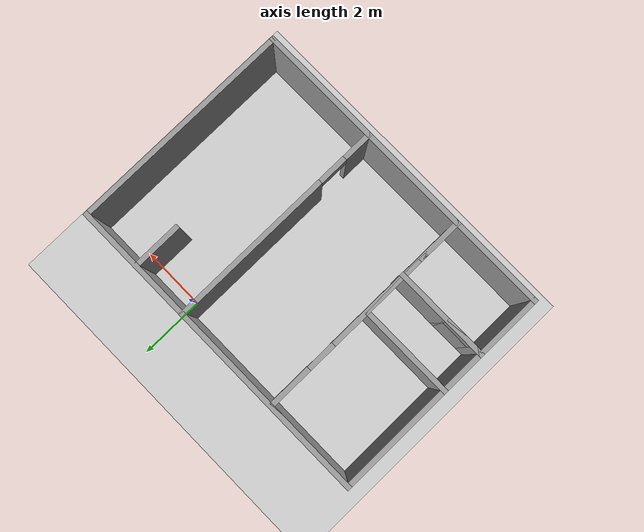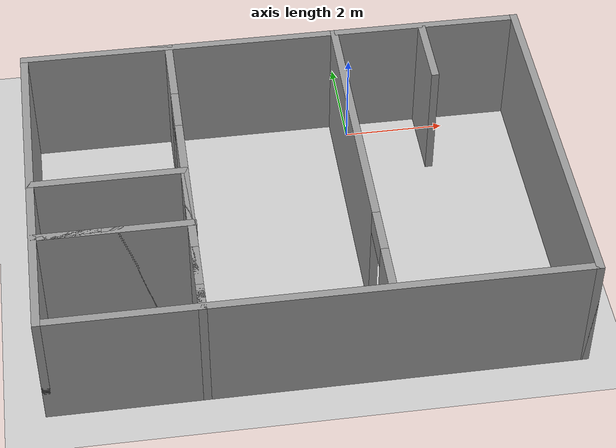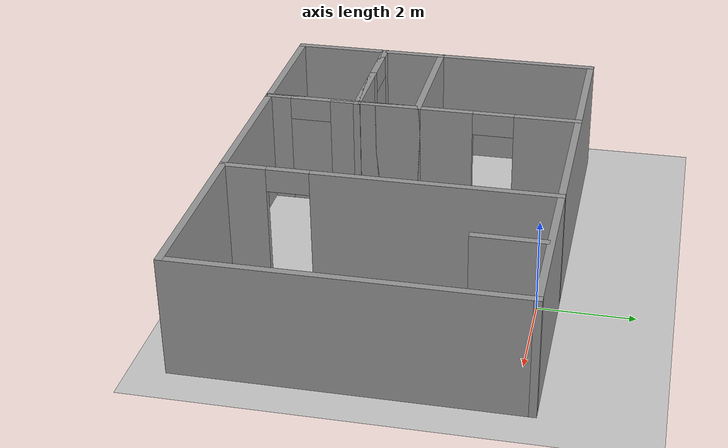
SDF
<sdf version="1.7">
 <world name="default">
  <light name="sun" type="directional">
   <pose>0 0 10 0 -0 0</pose>
   <diffuse>0.8 0.8 0.8 1</diffuse>
   <specular>0.2 0.2 0.2 1</specular>
   <attenuation>
    <range>1000</range>
    <constant>0.9</constant>
    <linear>0.01</linear>
    <quadratic>0.001</quadratic>
   </attenuation>
   <direction>-0.5 0.1 -0.9</direction>
   <spot><inner_angle>0</inner_angle><outer_angle>0</outer_angle><falloff>0</falloff></spot>
  </light>
  <model name="ground_plane">
   <static>1</static>
   <link name="link">
    <collision name="collision">
     <geometry><plane><normal>0 0 1</normal><size>100 100</size></plane></geometry>
     <surface><friction><ode><mu>100</mu><mu2>50</mu2></ode></friction></surface>
    </collision>
    <visual name="visual">
     <cast_shadows>0</cast_shadows>
     <geometry><plane><normal>0 0 1</normal><size>100 100</size></plane></geometry>
     <material>
      <script><uri>file://media/materials/scripts/gazebo.material</uri><name>Gazebo/Grey</name></script>
     </material>
    </visual>
   </link>
  </model>
  <gravity>0 0 -9.8</gravity>
  <magnetic_field>6e-06 2.3e-05 -4.2e-05</magnetic_field>
  <atmosphere type="adiabatic"/>
  <physics type="ode">
   <max_step_size>0.001</max_step_size>
   <real_time_factor>1</real_time_factor>
   <real_time_update_rate>1000</real_time_update_rate>
  </physics>
  <scene><ambient>0.4 0.4 0.4 1</ambient><background>0.7 0.7 0.7 1</background><shadows>1</shadows></scene>
  <spherical_coordinates>
   <surface_model>EARTH_WGS84</surface_model>
   <latitude_deg>0</latitude_deg>
   <longitude_deg>0</longitude_deg>
   <elevation>0</elevation>
   <heading_deg>0</heading_deg>
  </spherical_coordinates>
  <model name="simulation.map">
   <pose>-1.49436 -3.06101 0 0 -0 0</pose>
   <link name="Wall_17">
    <pose>1.24987 -0 0 0 -0 -1.5708</pose>
    <visual name="Wall_17_Visual_0">
     <pose>-0.941998 0 1.25 0 -0 0</pose>
     <geometry><box><size>5.11601 0.15 2.5</size></box></geometry>
     <material>
      <script><uri>file://media/materials/scripts/gazebo.material</uri><name>Gazebo/Grey</name></script>
      <ambient>1 1 1 1</ambient>
     </material>
     <meta><layer>0</layer></meta>
    </visual>
    <collision name="Wall_17_Collision_0">
     <geometry><box><size>5.11601 0.15 2.5</size></box></geometry>
     <pose>-0.941998 0 1.25 0 -0 0</pose>
    </collision>
    <visual name="Wall_17_Visual_1">
     <pose>3.008 0 1.25 0 -0 0</pose>
     <geometry><box><size>0.983995 0.15 2.5</size></box></geometry>
     <material>
      <script><uri>file://media/materials/scripts/gazebo.material</uri><name>Gazebo/Grey</name></script>
      <ambient>1 1 1 1</ambient>
     </material>
     <meta><layer>0</layer></meta>
    </visual>
    <collision name="Wall_17_Collision_1">
     <geometry><box><size>0.983995 0.15 2.5</size></box></geometry>
     <pose>3.008 0 1.25 0 -0 0</pose>
    </collision>
    <visual name="Wall_17_Visual_2">
     <pose>2.06601 0 2.25 0 -0 0</pose>
     <geometry><box><size>0.9 0.15 0.5</size></box></geometry>
     <material>
      <script><uri>file://media/materials/scripts/gazebo.material</uri><name>Gazebo/Grey</name></script>
      <ambient>1 1 1 1</ambient>
     </material>
     <meta><layer>0</layer></meta>
    </visual>
    <collision name="Wall_17_Collision_2">
     <geometry><box><size>0.9 0.15 0.5</size></box></geometry>
     <pose>2.06601 0 2.25 0 -0 0</pose>
    </collision>
   </link>
   <link name="Wall_19">
    <collision name="Wall_19_Collision">
     <geometry><box><size>1.5 0.15 2.5</size></box></geometry>
     <pose>0 0 1.25 0 -0 0</pose>
    </collision>
    <visual name="Wall_19_Visual">
     <pose>0 0 1.25 0 -0 0</pose>
     <geometry><box><size>1.5 0.15 2.5</size></box></geometry>
     <material>
      <script><uri>file://media/materials/scripts/gazebo.material</uri><name>Gazebo/Grey</name></script>
      <ambient>1 1 1 1</ambient>
     </material>
     <meta><layer>0</layer></meta>
    </visual>
    <pose>3.01986 2.65182 0 0 -0 1.5708</pose>
   </link>
   <link name="Wall_2">
    <collision name="Wall_2_Collision">
     <geometry><box><size>7 0.15 2.5</size></box></geometry>
     <pose>0 0 1.25 0 -0 0</pose>
    </collision>
    <visual name="Wall_2_Visual">
     <pose>0 0 1.25 0 -0 0</pose>
     <geometry><box><size>7 0.15 2.5</size></box></geometry>
     <material>
      <script><uri>file://media/materials/scripts/gazebo.material</uri><name>Gazebo/Grey</name></script>
      <ambient>1 1 1 1</ambient>
     </material>
     <meta><layer>0</layer></meta>
    </visual>
    <pose>-4.925 -0 0 0 -0 -1.5708</pose>
   </link>
   <link name="Wall_21">
    <collision name="Wall_21_Collision">
     <geometry><box><size>3 0.15 2.5</size></box></geometry>
     <pose>0 0 1.25 0 -0 0</pose>
    </collision>
    <visual name="Wall_21_Visual">
     <pose>0 0 1.25 0 -0 0</pose>
     <geometry><box><size>3 0.15 2.5</size></box></geometry>
     <material>
      <script><uri>file://media/materials/scripts/gazebo.material</uri><name>Gazebo/Grey</name></script>
      <ambient>1 1 1 1</ambient>
     </material>
     <meta><layer>0</layer></meta>
    </visual>
    <pose>-3.47989 -1.42237 0 0 -0 0</pose>
   </link>
   <link name="Wall_22">
    <pose>-3.5 -1.42237 0 0 -0 3.14159</pose>
    <visual name="Wall_22_Visual_0">
     <pose>-0.654715 0 1.25 0 -0 0</pose>
     <geometry><box><size>1.69057 0.15 2.5</size></box></geometry>
     <material>
      <script><uri>file://media/materials/scripts/gazebo.material</uri><name>Gazebo/Grey</name></script>
      <ambient>1 1 1 1</ambient>
     </material>
     <meta><layer>0</layer></meta>
    </visual>
    <collision name="Wall_22_Collision_0">
     <geometry><box><size>1.69057 0.15 2.5</size></box></geometry>
     <pose>-0.654715 0 1.25 0 -0 0</pose>
    </collision>
    <visual name="Wall_22_Visual_1">
     <pose>1.29529 0 1.25 0 -0 0</pose>
     <geometry><box><size>0.409429 0.15 2.5</size></box></geometry>
     <material>
      <script><uri>file://media/materials/scripts/gazebo.material</uri><name>Gazebo/Grey</name></script>
      <ambient>1 1 1 1</ambient>
     </material>
     <meta><layer>0</layer></meta>
    </visual>
    <collision name="Wall_22_Collision_1">
     <geometry><box><size>0.409429 0.15 2.5</size></box></geometry>
     <pose>1.29529 0 1.25 0 -0 0</pose>
    </collision>
    <visual name="Wall_22_Visual_2">
     <pose>0.640571 0 2.25 0 -0 0</pose>
     <geometry><box><size>0.9 0.15 0.5</size></box></geometry>
     <material>
      <script><uri>file://media/materials/scripts/gazebo.material</uri><name>Gazebo/Grey</name></script>
      <ambient>1 1 1 1</ambient>
     </material>
     <meta><layer>0</layer></meta>
    </visual>
    <collision name="Wall_22_Collision_2">
     <geometry><box><size>0.9 0.15 0.5</size></box></geometry>
     <pose>0.640571 0 2.25 0 -0 0</pose>
    </collision>
   </link>
   <link name="Wall_3">
    <collision name="Wall_3_Collision">
     <geometry><box><size>10 0.15 2.5</size></box></geometry>
     <pose>0 0 1.25 0 -0 0</pose>
    </collision>
    <visual name="Wall_3_Visual">
     <pose>0 0 1.25 0 -0 0</pose>
     <geometry><box><size>10 0.15 2.5</size></box></geometry>
     <material>
      <script><uri>file://media/materials/scripts/gazebo.material</uri><name>Gazebo/Grey</name></script>
      <ambient>1 1 1 1</ambient>
     </material>
     <meta><layer>0</layer></meta>
    </visual>
    <pose>-0 -3.425 0 0 -0 0</pose>
   </link>
   <link name="Wall_4">
    <collision name="Wall_4_Collision">
     <geometry><box><size>7 0.15 2.5</size></box></geometry>
     <pose>0 0 1.25 0 -0 0</pose>
    </collision>
    <visual name="Wall_4_Visual">
     <pose>0 0 1.25 0 -0 0</pose>
     <geometry><box><size>7 0.15 2.5</size></box></geometry>
     <material>
      <script><uri>file://media/materials/scripts/gazebo.material</uri><name>Gazebo/Grey</name></script>
      <ambient>1 1 1 1</ambient>
     </material>
     <meta><layer>0</layer></meta>
    </visual>
    <pose>4.925 -0 0 0 -0 1.5708</pose>
   </link>
   <link name="Wall_5">
    <collision name="Wall_5_Collision">
     <geometry><box><size>10 0.15 2.5</size></box></geometry>
     <pose>0 0 1.25 0 -0 0</pose>
    </collision>
    <visual name="Wall_5_Visual">
     <pose>0 0 1.25 0 -0 0</pose>
     <geometry><box><size>10 0.15 2.5</size></box></geometry>
     <material>
      <script><uri>file://media/materials/scripts/gazebo.material</uri><name>Gazebo/Grey</name></script>
      <ambient>1 1 1 1</ambient>
     </material>
     <meta><layer>0</layer></meta>
    </visual>
    <pose>-0 3.425 0 0 -0 3.14159</pose>
   </link>
   <link name="Wall_6">
    <collision name="Wall_6_Collision">
     <geometry><box><size>3 0.15 2.5</size></box></geometry>
     <pose>0 0 1.25 0 -0 0</pose>
    </collision>
    <visual name="Wall_6_Visual">
     <pose>0 0 1.25 0 -0 0</pose>
     <geometry><box><size>3 0.15 2.5</size></box></geometry>
     <material>
      <script><uri>file://media/materials/scripts/gazebo.material</uri><name>Gazebo/Grey</name></script>
      <ambient>1 1 1 1</ambient>
     </material>
     <meta><layer>0</layer></meta>
    </visual>
    <pose>-3.5 3.425 0 0 -0 0</pose>
   </link>
   <link name="Wall_7">
    <pose>-2.075 -0 0 0 -0 -1.5708</pose>
    <visual name="Wall_7_Visual_0">
     <pose>-2.77233 0 1.25 0 -0 0</pose>
     <geometry><box><size>1.45534 0.15 2.5</size></box></geometry>
     <material>
      <script><uri>file://media/materials/scripts/gazebo.material</uri><name>Gazebo/Grey</name></script>
      <ambient>1 1 1 1</ambient>
     </material>
     <meta><layer>0</layer></meta>
    </visual>
    <collision name="Wall_7_Collision_0">
     <geometry><box><size>1.45534 0.15 2.5</size></box></geometry>
     <pose>-2.77233 0 1.25 0 -0 0</pose>
    </collision>
    <visual name="Wall_7_Visual_1">
     <pose>1.17767 0 1.25 0 -0 0</pose>
     <geometry><box><size>4.64466 0.15 2.5</size></box></geometry>
     <material>
      <script><uri>file://media/materials/scripts/gazebo.material</uri><name>Gazebo/Grey</name></script>
      <ambient>1 1 1 1</ambient>
     </material>
     <meta><layer>0</layer></meta>
    </visual>
    <collision name="Wall_7_Collision_1">
     <geometry><box><size>4.64466 0.15 2.5</size></box></geometry>
     <pose>1.17767 0 1.25 0 -0 0</pose>
    </collision>
    <visual name="Wall_7_Visual_2">
     <pose>-1.59466 0 2.25 0 -0 0</pose>
     <geometry><box><size>0.9 0.15 0.5</size></box></geometry>
     <material>
      <script><uri>file://media/materials/scripts/gazebo.material</uri><name>Gazebo/Grey</name></script>
      <ambient>1 1 1 1</ambient>
     </material>
     <meta><layer>0</layer></meta>
    </visual>
    <collision name="Wall_7_Collision_2">
     <geometry><box><size>0.9 0.15 0.5</size></box></geometry>
     <pose>-1.59466 0 2.25 0 -0 0</pose>
    </collision>
   </link>
   <link name="Wall_8">
    <pose>-2.075 -1.75 0 0 -0 1.5708</pose>
    <visual name="Wall_8_Visual_0">
     <pose>-1.45914 0 1.25 0 -0 0</pose>
     <geometry><box><size>0.581723 0.15 2.5</size></box></geometry>
     <material>
      <script><uri>file://media/materials/scripts/gazebo.material</uri><name>Gazebo/Grey</name></script>
      <ambient>1 1 1 1</ambient>
     </material>
     <meta><layer>0</layer></meta>
    </visual>
    <collision name="Wall_8_Collision_0">
     <geometry><box><size>0.581723 0.15 2.5</size></box></geometry>
     <pose>-1.45914 0 1.25 0 -0 0</pose>
    </collision>
    <visual name="Wall_8_Visual_1">
     <pose>0.740862 0 1.25 0 -0 0</pose>
     <geometry><box><size>2.01828 0.15 2.5</size></box></geometry>
     <material>
      <script><uri>file://media/materials/scripts/gazebo.material</uri><name>Gazebo/Grey</name></script>
      <ambient>1 1 1 1</ambient>
     </material>
     <meta><layer>0</layer></meta>
    </visual>
    <collision name="Wall_8_Collision_1">
     <geometry><box><size>2.01828 0.15 2.5</size></box></geometry>
     <pose>0.740862 0 1.25 0 -0 0</pose>
    </collision>
    <visual name="Wall_8_Visual_2">
     <pose>-0.718277 0 2.25 0 -0 0</pose>
     <geometry><box><size>0.9 0.15 0.5</size></box></geometry>
     <material>
      <script><uri>file://media/materials/scripts/gazebo.material</uri><name>Gazebo/Grey</name></script>
      <ambient>1 1 1 1</ambient>
     </material>
     <meta><layer>0</layer></meta>
    </visual>
    <collision name="Wall_8_Collision_2">
     <geometry><box><size>0.9 0.15 0.5</size></box></geometry>
     <pose>-0.718277 0 2.25 0 -0 0</pose>
    </collision>
   </link>
   <link name="Wall_9">
    <collision name="Wall_9_Collision">
     <geometry><box><size>3 0.15 2.5</size></box></geometry>
     <pose>0 0 1.25 0 -0 0</pose>
    </collision>
    <visual name="Wall_9_Visual">
     <pose>0 0 1.25 0 -0 0</pose>
     <geometry><box><size>3 0.15 2.5</size></box></geometry>
     <material>
      <script><uri>file://media/materials/scripts/gazebo.material</uri><name>Gazebo/Grey</name></script>
      <ambient>1 1 1 1</ambient>
     </material>
     <meta><layer>0</layer></meta>
    </visual>
    <pose>-3.5 -0.075 0 0 -0 3.14159</pose>
   </link>
   <static>1</static>
  </model>
 </world>
</sdf>
